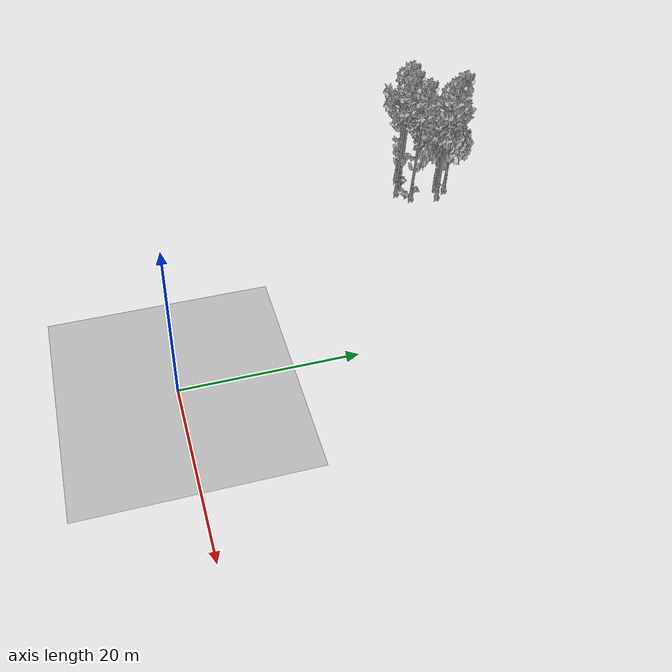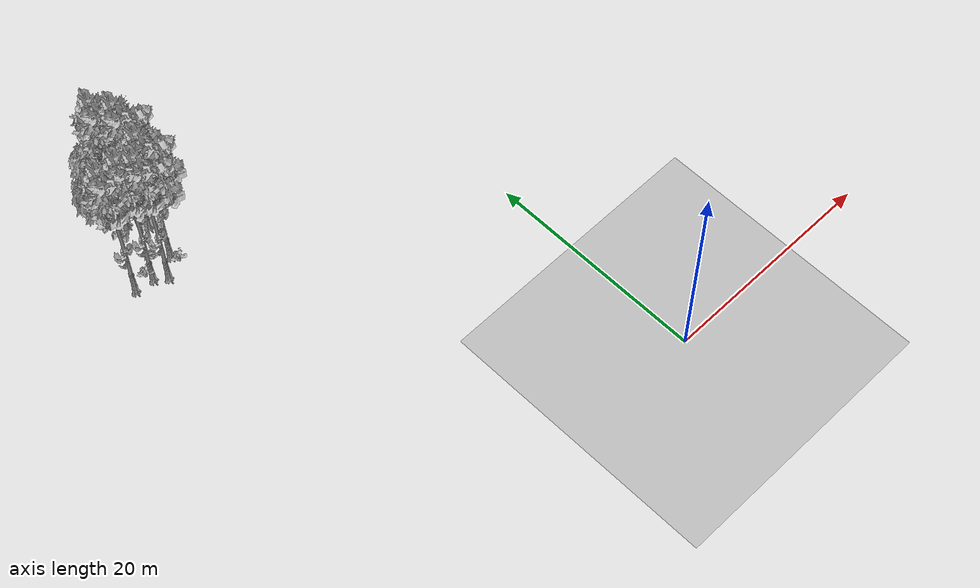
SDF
<sdf version="1.7">
 <world name="default">
  <model name="ground_plane">
   <static>1</static>
   <link name="link">
    <collision name="collision">
     <pose>-50 0 0 0 -0 0</pose>
     <geometry><plane><normal>0 0 1</normal><size>80 80</size></plane></geometry>
     <surface><contact><ode><min_depth>0.01</min_depth><max_vel>0</max_vel></ode></contact></surface>
    </collision>
    <visual name="grass">
     <cast_shadows>0</cast_shadows>
     <geometry>
      <mesh>
       <scale>0.46714285714285714 0.46714285714285714 0.1</scale>
       <uri>file://grass_plane/meshes/grass_plane.dae</uri>
      </mesh>
     </geometry>
    </visual>
   </link>
  </model>
  <model name="Tree 32">
   <static>1</static>
   <pose>-25.14496976167465 33.52937645445756 0 1.57079 -0 0</pose>
   <link name="link">
    <collision name="collision">
     <geometry><mesh><scale>3.5 5 3.5</scale><uri>model://tree_9/meshes/tree_9.obj</uri></mesh></geometry>
    </collision>
    <visual name="visual">
     <geometry><mesh><scale>3.5 5 3.5</scale><uri>model://tree_9/meshes/tree_9.obj</uri></mesh></geometry>
    </visual>
   </link>
  </model>
  <model name="Tree 78">
   <static>1</static>
   <pose>-24.91072866706287 39.11115877936925 0 1.57079 -0 0</pose>
   <link name="link">
    <collision name="collision">
     <geometry><mesh><scale>3.5 5 3.5</scale><uri>model://tree_2/meshes/tree_2.obj</uri></mesh></geometry>
    </collision>
    <visual name="visual">
     <geometry><mesh><scale>3.5 5 3.5</scale><uri>model://tree_2/meshes/tree_2.obj</uri></mesh></geometry>
    </visual>
   </link>
  </model>
  <model name="Tree 144">
   <static>1</static>
   <pose>-24.213229056947302 39.875421047097404 0 1.57079 -0 0</pose>
   <link name="link">
    <collision name="collision">
     <geometry><mesh><scale>3.5 5 3.5</scale><uri>model://tree_9/meshes/tree_9.obj</uri></mesh></geometry>
    </collision>
    <visual name="visual">
     <geometry><mesh><scale>3.5 5 3.5</scale><uri>model://tree_9/meshes/tree_9.obj</uri></mesh></geometry>
    </visual>
   </link>
  </model>
  <model name="Tree 160">
   <static>1</static>
   <pose>-27.84519248364201 34.46904059141286 0 1.57079 -0 0</pose>
   <link name="link">
    <collision name="collision">
     <geometry><mesh><scale>3.5 5 3.5</scale><uri>model://tree_9/meshes/tree_9.obj</uri></mesh></geometry>
    </collision>
    <visual name="visual">
     <geometry><mesh><scale>3.5 5 3.5</scale><uri>model://tree_9/meshes/tree_9.obj</uri></mesh></geometry>
    </visual>
   </link>
  </model>
  <model name="Tree 212">
   <static>1</static>
   <pose>-24.060528821840265 38.320039400883516 0 1.57079 -0 0</pose>
   <link name="link">
    <collision name="collision">
     <geometry><mesh><scale>3.5 5 3.5</scale><uri>model://tree_2/meshes/tree_2.obj</uri></mesh></geometry>
    </collision>
    <visual name="visual">
     <geometry><mesh><scale>3.5 5 3.5</scale><uri>model://tree_2/meshes/tree_2.obj</uri></mesh></geometry>
    </visual>
   </link>
  </model>
  <model name="Tree 294">
   <static>1</static>
   <pose>-23.70589059938535 35.033573548661366 0 1.57079 -0 0</pose>
   <link name="link">
    <collision name="collision">
     <geometry><mesh><scale>3.5 5 3.5</scale><uri>model://tree_9/meshes/tree_9.obj</uri></mesh></geometry>
    </collision>
    <visual name="visual">
     <geometry><mesh><scale>3.5 5 3.5</scale><uri>model://tree_9/meshes/tree_9.obj</uri></mesh></geometry>
    </visual>
   </link>
  </model>
  <model name="Tree 357">
   <static>1</static>
   <pose>-26.135874102808234 34.308085925561684 0 1.57079 -0 0</pose>
   <link name="link">
    <collision name="collision">
     <geometry><mesh><scale>3.5 5 3.5</scale><uri>model://tree_9/meshes/tree_9.obj</uri></mesh></geometry>
    </collision>
    <visual name="visual">
     <geometry><mesh><scale>3.5 5 3.5</scale><uri>model://tree_9/meshes/tree_9.obj</uri></mesh></geometry>
    </visual>
   </link>
  </model>
  <model name="Tree 422">
   <static>1</static>
   <pose>-23.106531148920745 38.438249590600094 0 1.57079 -0 0</pose>
   <link name="link">
    <collision name="collision">
     <geometry><mesh><scale>3.5 5 3.5</scale><uri>model://tree_9/meshes/tree_9.obj</uri></mesh></geometry>
    </collision>
    <visual name="visual">
     <geometry><mesh><scale>3.5 5 3.5</scale><uri>model://tree_9/meshes/tree_9.obj</uri></mesh></geometry>
    </visual>
   </link>
  </model>
  <model name="Bush 75">
   <static>1</static>
   <pose>-24.91231567372149 36.12905858517 0 1.57079 -0 0</pose>
   <link name="link">
    <collision name="collision">
     <geometry><mesh><scale>2 2 2</scale><uri>model://bush_2/meshes/bush_2.obj</uri></mesh></geometry>
     <surface><contact><collide_without_contact>false</collide_without_contact></contact></surface>
    </collision>
    <visual name="visual">
     <geometry><mesh><scale>2 2 2</scale><uri>model://bush_2/meshes/bush_2.obj</uri></mesh></geometry>
    </visual>
   </link>
  </model>
  <model name="Bush 217">
   <static>1</static>
   <pose>-25.4907107277232 39.488205058848195 0 1.57079 -0 0</pose>
   <link name="link">
    <collision name="collision">
     <geometry><mesh><scale>2 2 2</scale><uri>model://bush_2/meshes/bush_2.obj</uri></mesh></geometry>
     <surface><contact><collide_without_contact>false</collide_without_contact></contact></surface>
    </collision>
    <visual name="visual">
     <geometry><mesh><scale>2 2 2</scale><uri>model://bush_2/meshes/bush_2.obj</uri></mesh></geometry>
    </visual>
   </link>
  </model>
  <model name="Bush 449">
   <static>1</static>
   <pose>-26.372630800178932 34.78195422846291 0 1.57079 -0 0</pose>
   <link name="link">
    <collision name="collision">
     <geometry><mesh><scale>2 2 2</scale><uri>model://bush_0/meshes/bush_0.obj</uri></mesh></geometry>
     <surface><contact><collide_without_contact>false</collide_without_contact></contact></surface>
    </collision>
    <visual name="visual">
     <geometry><mesh><scale>2 2 2</scale><uri>model://bush_0/meshes/bush_0.obj</uri></mesh></geometry>
    </visual>
   </link>
  </model>
  <model name="Bush 618">
   <static>1</static>
   <pose>-23.474904165618277 34.060394664441986 0 1.57079 -0 0</pose>
   <link name="link">
    <collision name="collision">
     <geometry><mesh><scale>2 2 2</scale><uri>model://bush_0/meshes/bush_0.obj</uri></mesh></geometry>
     <surface><contact><collide_without_contact>false</collide_without_contact></contact></surface>
    </collision>
    <visual name="visual">
     <geometry><mesh><scale>2 2 2</scale><uri>model://bush_0/meshes/bush_0.obj</uri></mesh></geometry>
    </visual>
   </link>
  </model>
 </world>
</sdf>
